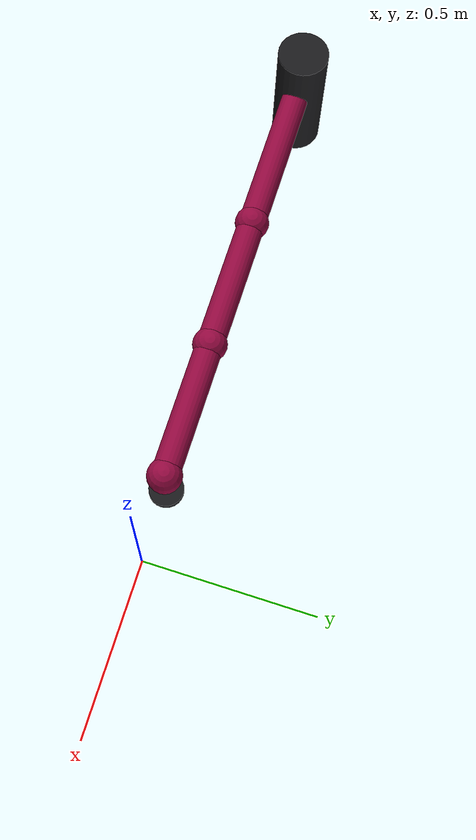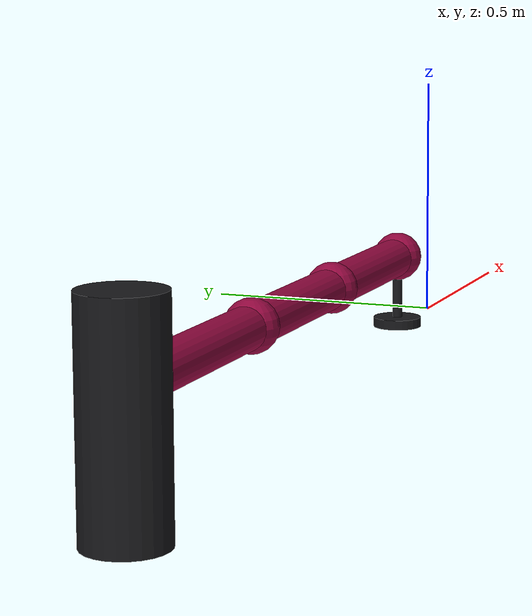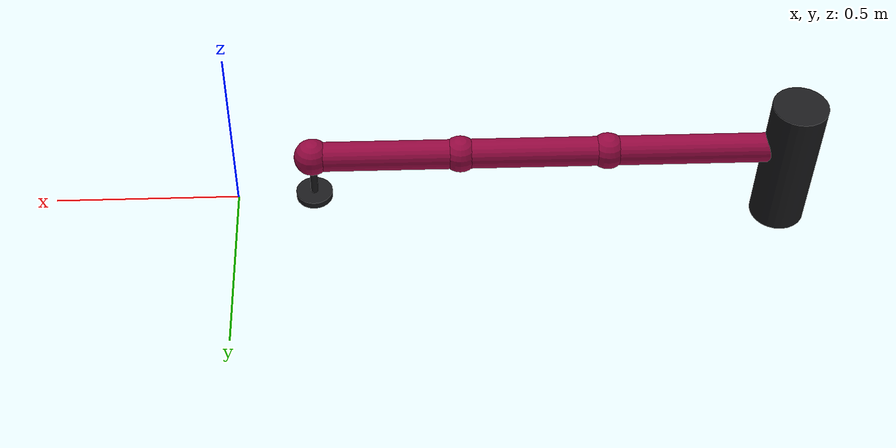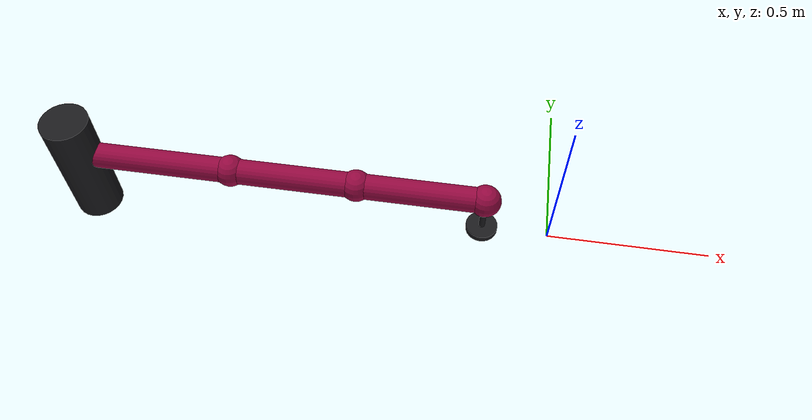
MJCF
<mujoco model="planar_robot_1">
    <compiler autolimits="true" angle="radian"/>
    <asset>
        <material name="dark_red" rgba="0.58 0.03 0.25 1"/>
        <material name="black" rgba="0.1 0.1 0.11 1"/>
    </asset>

    <default>
        <default class="visual">
            <geom contype="0" conaffinity="0"/>
        </default>
    </default>

    <worldbody>
        <body name="planar_robot_1/base" pos="-1.51 0 -0.1">
            <geom type="cylinder" material="black" size="0.075 0.2" pos="0 0 0.2" class="visual"/>
            <inertial pos="0 0 0" mass="1" diaginertia="0.05 0.018 0.044"/>
            <body name="planar_robot_1/body_1" pos="0 0 0.25">
                <joint name="planar_robot_1/joint_1" axis="0 0 1" range="-2.9670597283903604 2.9670597283903604"/>
                <inertial pos="0.25 0 0" mass="3" diaginertia="0.064375 0.064375 0.00375"/>
                <geom type="cylinder" material="dark_red" size="0.04 0.25" euler="0 1.57079632679 0" pos="0.25 0 0"/>
                <body name="planar_robot_1/body_2" pos="0.5 0 0" >
                    <joint name="planar_robot_1/joint_2" axis="0 0 1" range="-2.0943951023931953 2.0943951023931953"/>
                    <inertial pos="0.2 0 0" mass="2" diaginertia="0.0335 0.0335 0.003"/>
                    <geom type="cylinder" material="dark_red" size="0.04 0.2" euler="0 1.57079632679 0" pos="0.2 0 0"/>
                    <geom type="sphere" material="dark_red" size="0.05"/>
                    <body name="planar_robot_1/body_3" pos="0.4 0 0" >
                        <joint name="planar_robot_1/joint_3" axis="0 0 1" range="-2.0943951023931953 2.0943951023931953"/>
                        <inertial pos="0.2 0 0" mass="2" diaginertia="0.0335 0.0335 0.003"/>
                        <geom type="cylinder" material="dark_red" size="0.04 0.2" euler="0 1.57079632679 0" pos="0.2 0 0"/>
                        <geom type="sphere" material="dark_red" size="0.05"/>
                        <body name="planar_robot_1/body_hand" pos="0.4 0 0">
                            <inertial pos="0 0 0" mass="0.1" diaginertia="0.0008 0.0023 0.0023"/>
                            <geom type="sphere" material="dark_red" size="0.05"/>
                            <geom type="cylinder" material="black" size="0.01 0.075" pos="0 0 -0.075"/>
                            <body name="planar_robot_1/body_ee" pos="0 0 -0.15">
                                <inertial pos="0 0 0" mass="0.1" diaginertia="0.0008 0.0023 0.0023"/>
                                <geom name="planar_robot_1/ee" type="cylinder" material="black" size="0.05 0.01" pos="0 0 0.01" class="visual"/>
                                <geom name="planar_robot_1/ee_collision" type="cylinder" size="0.05 0.02" pos="0 0 0" friction="0 0 0" group="3" rgba="0 0 0 0"/>
                            </body>
                        </body>
                    </body>
                </body>
            </body>
        </body>
    </worldbody>

    <actuator>
        <motor name="planar_robot_1/joint_1" joint="planar_robot_1/joint_1" ctrlrange="-40 40"/>
        <motor name="planar_robot_1/joint_2" joint="planar_robot_1/joint_2" ctrlrange="-15 15"/>
        <motor name="planar_robot_1/joint_3" joint="planar_robot_1/joint_3" ctrlrange="-5 5"/>
    </actuator>
</mujoco>
